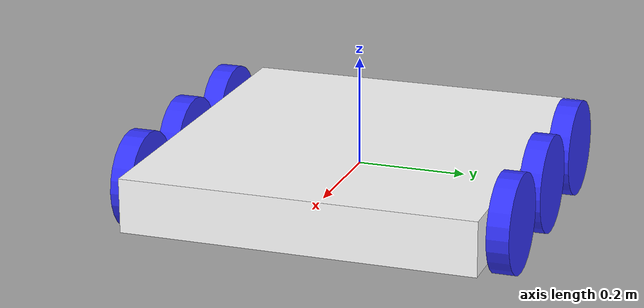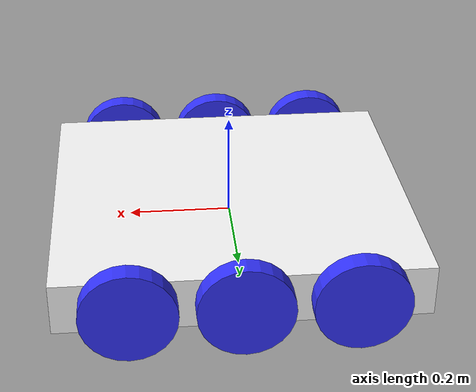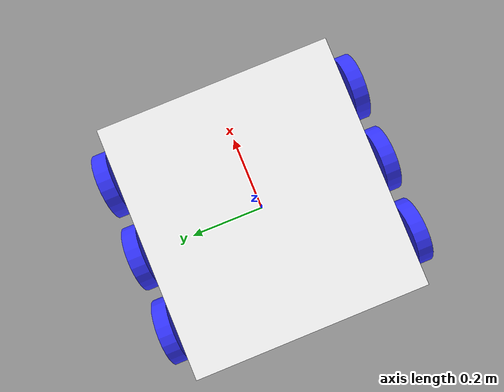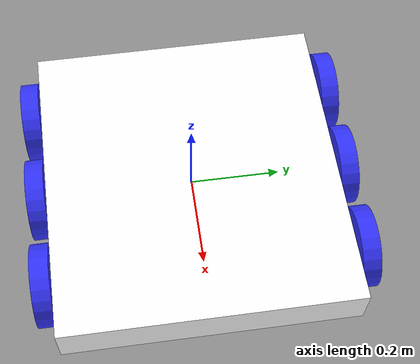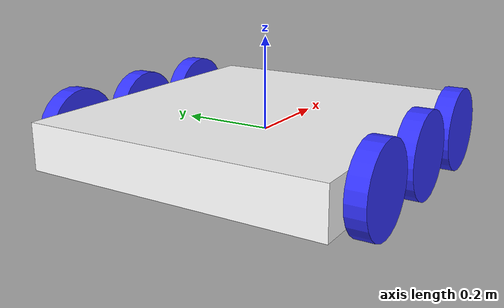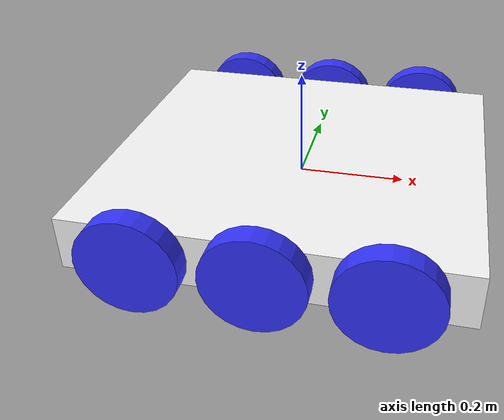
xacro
<?xml version="1.0"?>
<robot xmlns:xacro="http://www.ros.org/wiki/xacro" >

    <xacro:include filename="macros.xacro"/>

    <!-- PROPERTIES -->
    <xacro:property name="chassis_length" value="0.7" />
    <xacro:property name="chassis_width" value="0.65" />
    <xacro:property name="chassis_height" value="0.1" />
    <xacro:property name="wheel_radius" value="0.09" />
    <xacro:property name="wheel_thickness" value="0.04" />
    <xacro:property name="wheel_seperation" value="0.21" />

    <material name="white">
        <color rgba="1 1 1 1" />
    </material>

    <material name="orange">
        <color rgba="1 0.3 0.1 1"/>
    </material>

    <material name="blue">
        <color rgba="0.2 0.2 1 1"/>
    </material>

    <material name="black">
        <color rgba="0 0 0 1"/>
    </material>

    <!-- BASE LINK -->

    <link name="base_link">

    </link>

    <!-- CHASSIS LINK -->
    <joint name="chassis_joint" type="fixed">
        <parent link="base_link"/>
        <child link="chassis_link"/>
        <origin xyz="0 0 0"/>
    </joint>

    <link name="chassis_link">
        <visual>
            <origin xyz="0 0 0"/>
            <geometry>
                <box size="${chassis_length} ${chassis_width} ${chassis_height}"/>
            </geometry>
            <material name="white"/>
        </visual>
        <collision>
            <origin xyz="0 0 0"/>
            <geometry>
                <box size="${chassis_length} ${chassis_width} ${chassis_height}"/>
            </geometry>
        </collision>
        <xacro:inertial_box mass="1" x="${chassis_length}" y="${chassis_width}" z="${chassis_height}">
            <origin xyz="0 0 0" rpy="0 0 0"/>
        </xacro:inertial_box>
    </link>

    <gazebo reference="chassis_link">
        <material>Gazebo/White</material>
    </gazebo>

    <!-- WHEEL LINKS LEFT 1 (CASTER) -->
    <joint name="left_wheel_1_joint" type="fixed">
        <parent link="base_link"/>
        <child link="left_wheel_1_link"/>
        <origin xyz="${wheel_seperation} ${chassis_width/2 + wheel_thickness/2} 0" rpy="-${pi/2} 0 0" />
    </joint>

    <link name="left_wheel_1_link">
        <visual>
            <geometry>
                <cylinder radius="${wheel_radius}" length="${wheel_thickness}"/>
            </geometry>
            <material name="blue"/>
        </visual>
        <collision>
            <geometry>
                <cylinder radius="${wheel_radius}" length="${wheel_thickness}"/>
            </geometry>
        </collision>
        <xacro:inertial_cylinder mass="0.2" length="${wheel_thickness}" radius="${wheel_thickness}">
            <origin xyz="0 0 0" rpy="0 0 0"/>
        </xacro:inertial_cylinder>
    </link>

    <gazebo reference="left_wheel_1_link">
        <material>Gazebo/Blue</material>
        <mu1 value="0.001"/>
        <mu2 value="0.001"/>
    </gazebo>

    <!-- WHEEL LINKS LEFT 2 -->
    <joint name="left_wheel_2_joint" type="continuous">
        <parent link="base_link"/>
        <child link="left_wheel_2_link"/>
        <origin xyz="0 ${chassis_width/2 + wheel_thickness/2} 0" rpy="-${pi/2} 0 0" />
        <axis xyz="0 0 1"/>
    </joint>

    <link name="left_wheel_2_link">
        <visual>
            <geometry>
                <cylinder radius="${wheel_radius}" length="${wheel_thickness}"/>
            </geometry>
            <material name="blue"/>
        </visual>
        <collision>
            <geometry>
                <cylinder radius="${wheel_radius}" length="${wheel_thickness}"/>
            </geometry>
        </collision>
        <xacro:inertial_cylinder mass="0.2" length="${wheel_thickness}" radius="${wheel_thickness}">
            <origin xyz="0 0 0" rpy="0 0 0"/>
        </xacro:inertial_cylinder>
    </link>

    <gazebo reference="left_wheel_2_link">
        <material>Gazebo/Blue</material>
    </gazebo>

    <!-- WHEEL LINKS LEFT 3 (CASTER) -->
    <joint name="left_wheel_3_joint" type="fixed">
        <parent link="base_link"/>
        <child link="left_wheel_3_link"/>
        <origin xyz="-${wheel_seperation} ${chassis_width/2 + wheel_thickness/2} 0" rpy="-${pi/2} 0 0" />
    </joint>

    <link name="left_wheel_3_link">
        <visual>
            <geometry>
                <cylinder radius="${wheel_radius}" length="${wheel_thickness}"/>
            </geometry>
            <material name="blue"/>
        </visual>
        <collision>
            <geometry>
                <cylinder radius="${wheel_radius}" length="${wheel_thickness}"/>
            </geometry>
        </collision>
        <xacro:inertial_cylinder mass="0.2" length="${wheel_thickness}" radius="${wheel_thickness}">
            <origin xyz="0 0 0" rpy="0 0 0"/>
        </xacro:inertial_cylinder>
    </link>

    <gazebo reference="left_wheel_3_link">
        <material>Gazebo/Blue</material>
        <mu1 value="0.001"/>
        <mu2 value="0.001"/>
    </gazebo>

    <!-- WHEEL LINKS RIGHT 1 (CASTER) -->
    <joint name="right_wheel_1_joint" type="fixed">
        <parent link="base_link"/>
        <child link="right_wheel_1_link"/>
        <origin xyz="${wheel_seperation} -${chassis_width/2 + wheel_thickness/2} 0" rpy="${pi/2} 0 0" />
    </joint>

    <link name="right_wheel_1_link">
        <visual>
            <geometry>
                <cylinder radius="${wheel_radius}" length="${wheel_thickness}"/>
            </geometry>
            <material name="blue"/>
        </visual>
        <collision>
            <geometry>
                <cylinder radius="${wheel_radius}" length="${wheel_thickness}"/>
            </geometry>
        </collision>
        <xacro:inertial_cylinder mass="0.2" length="${wheel_thickness}" radius="${wheel_radius}">
            <origin xyz="0 0 0" rpy="0 0 0"/>
        </xacro:inertial_cylinder>
    </link>

    <gazebo reference="right_wheel_1_link">
        <material>Gazebo/Blue</material>
        <mu1 value="0.001"/>
        <mu2 value="0.001"/>
    </gazebo>

    <!-- WHEEL LINKS RIGHT 2 -->
    <joint name="right_wheel_2_joint" type="continuous">
        <parent link="base_link"/>
        <child link="right_wheel_2_link"/>
        <origin xyz="0 -${chassis_width/2 + wheel_thickness/2} 0" rpy="${pi/2} 0 0" />
        <axis xyz="0 0 -1"/>
    </joint>

    <link name="right_wheel_2_link">
        <visual>
            <geometry>
                <cylinder radius="${wheel_radius}" length="${wheel_thickness}"/>
            </geometry>
            <material name="blue"/>
        </visual>
        <collision>
            <geometry>
                <cylinder radius="${wheel_radius}" length="${wheel_thickness}"/>
            </geometry>
        </collision>
        <xacro:inertial_cylinder mass="0.2" length="${wheel_thickness}" radius="${wheel_radius}">
            <origin xyz="0 0 0" rpy="0 0 0"/>
        </xacro:inertial_cylinder>
    </link>

    <gazebo reference="right_wheel_2_link">
        <material>Gazebo/Blue</material>
    </gazebo>

    <!-- WHEEL LINKS RIGHT 3 (CASTER) -->
    <joint name="right_wheel_3_joint" type="fixed">
        <parent link="base_link"/>
        <child link="right_wheel_3_link"/>
        <origin xyz="-${wheel_seperation} -${chassis_width/2 + wheel_thickness/2} 0" rpy="${pi/2} 0 0" />
    </joint>

    <link name="right_wheel_3_link">
        <visual>
            <geometry>
                <cylinder radius="${wheel_radius}" length="${wheel_thickness}"/>
            </geometry>
            <material name="blue"/>
        </visual>
        <collision>
            <geometry>
                <cylinder radius="${wheel_radius}" length="${wheel_thickness}"/>
            </geometry>
        </collision>
        <xacro:inertial_cylinder mass="0.2" length="${wheel_thickness}" radius="${wheel_radius}">
            <origin xyz="0 0 0" rpy="0 0 0"/>
        </xacro:inertial_cylinder>
    </link>

    <gazebo reference="right_wheel_3_link">
        <material>Gazebo/Blue</material>
        <mu1 value="0.001"/>
        <mu2 value="0.001"/>
    </gazebo>
</robot>
